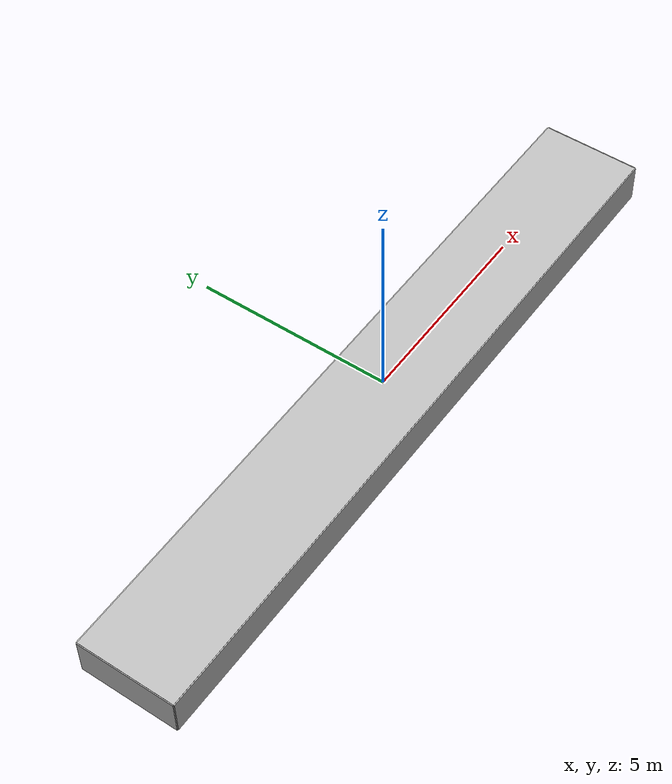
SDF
<sdf version="1.4">
 <world name="UCL_tank">
  <physics name="default_physics" default="true" type="ode">
   <max_step_size>0.002</max_step_size>
   <real_time_factor>1.0</real_time_factor>
   <real_time_update_rate>500</real_time_update_rate>
   <ode><solver><type>quick</type><iters>50</iters><sor>1.2</sor></solver></ode>
  </physics>
  <scene>
   <ambient>0.01 0.01 0.01 1.0</ambient>
   <sky><clouds><speed>12</speed></clouds></sky>
   <shadows>1</shadows>
   <fog>
    <color>0.1 0.2 0.3 1.0</color>
    <type>linear</type>
    <density>0.1</density>
    <start>5</start>
    <end>25</end>
   </fog>
  </scene>
  <spherical_coordinates>
   <latitude_deg>56.71897669633431</latitude_deg>
   <longitude_deg>3.515625</longitude_deg>
  </spherical_coordinates>
  <light type="directional" name="sun1">
   <pose>15 0 10 0 0 0</pose>
   <diffuse>1 1 1 1</diffuse>
   <specular>.1 .1 .1 1</specular>
   <direction>0.3 0.3 -1</direction>
   <cast_shadows>false</cast_shadows>
  </light>
  <light type="directional" name="sun_diffuse">
   <pose>-15 0 -10 0 0 0</pose>
   <diffuse>0.6 0.6 0.6 1</diffuse>
   <specular>0 0 0 1</specular>
   <direction>-0.3 -0.3 -1</direction>
   <cast_shadows>false</cast_shadows>
  </light>
  <model name="custom_tank">
   <static>true</static>
   <link name="tank_link">
    <visual name="water_surface">
     <cast_shadows>false</cast_shadows>
     <geometry><box><size>18.15 2.5 0.01</size></box></geometry>
     <material>
      <script>
       <uri>file://Media/materials/scripts/water.material</uri>
       <name>UUVSimulator/StaticDeepWater</name>
      </script>
     </material>
    </visual>
    <visual name="tank_bottom">
     <cast_shadows>false</cast_shadows>
     <pose>0 0 -1 0 0 0</pose>
     <geometry><box><size>18.15 2.5 0.05</size></box></geometry>
     <material>
      <script>
       <uri>file://Media/materials/scripts/sand.material</uri>
       <name>UUVSimulator/SandAndStones</name>
      </script>
     </material>
    </visual>
    <collision name="tank_bottom">
     <pose>0 0 -1 0 0 0</pose>
     <geometry><box><size>18.15 2.5 0.05</size></box></geometry>
    </collision>
    <visual name="wall_north">
     <cast_shadows>false</cast_shadows>
     <pose>9.075 0 -0.5 0 0 0</pose>
     <geometry><box><size>0.05 2.5 1</size></box></geometry>
     <material>
      <script><uri>file://Media/materials/scripts/water.material</uri><name>UUVSimulator/SeaWall</name></script>
     </material>
    </visual>
    <collision name="wall_north">
     <pose>9.075 0 -0.5 0 0 0</pose>
     <geometry><box><size>0.05 2.5 1</size></box></geometry>
    </collision>
    <visual name="wall_south">
     <cast_shadows>false</cast_shadows>
     <pose>-9.075 0 -0.5 0 0 0</pose>
     <geometry><box><size>0.05 2.5 1</size></box></geometry>
     <material>
      <script><uri>file://Media/materials/scripts/water.material</uri><name>UUVSimulator/SeaWall</name></script>
     </material>
    </visual>
    <collision name="wall_south">
     <pose>-9.075 0 -0.5 0 0 0</pose>
     <geometry><box><size>0.05 2.5 1</size></box></geometry>
    </collision>
    <visual name="wall_east">
     <cast_shadows>false</cast_shadows>
     <pose>0 1.25 -0.5 0 0 0</pose>
     <geometry><box><size>18.15 0.05 1</size></box></geometry>
     <material>
      <script><uri>file://Media/materials/scripts/water.material</uri><name>UUVSimulator/SeaWall</name></script>
     </material>
    </visual>
    <collision name="wall_east">
     <pose>0 1.25 -0.5 0 0 0</pose>
     <geometry><box><size>18.15 0.05 1</size></box></geometry>
    </collision>
    <visual name="wall_west">
     <cast_shadows>false</cast_shadows>
     <pose>0 -1.25 -0.5 0 0 0</pose>
     <geometry><box><size>18.15 0.05 1</size></box></geometry>
     <material>
      <script><uri>file://Media/materials/scripts/water.material</uri><name>UUVSimulator/SeaWall</name></script>
     </material>
    </visual>
    <collision name="wall_west">
     <pose>0 -1.25 -0.5 0 0 0</pose>
     <geometry><box><size>18.15 0.05 1</size></box></geometry>
    </collision>
   </link>
  </model>
  <plugin name="underwater_current_plugin" filename="libuuv_underwater_current_ros_plugin.so">
   <namespace>hydrodynamics</namespace>
   <constant_current>
    <topic>current_velocity</topic>
    <velocity><mean>0</mean><min>0</min><max>2</max><mu>0.0</mu><noiseAmp>0.0</noiseAmp></velocity>
    <horizontal_angle>
     <mean>0</mean>
     <min>-3.141592653589793238</min>
     <max>3.141592653589793238</max>
     <mu>0.0</mu>
     <noiseAmp>0.0</noiseAmp>
    </horizontal_angle>
    <vertical_angle>
     <mean>0</mean>
     <min>-3.141592653589793238</min>
     <max>3.141592653589793238</max>
     <mu>0.0</mu>
     <noiseAmp>0.0</noiseAmp>
    </vertical_angle>
   </constant_current>
  </plugin>
  <plugin name="sc_interface" filename="libuuv_sc_ros_interface_plugin.so"/>
 </world>
</sdf>
